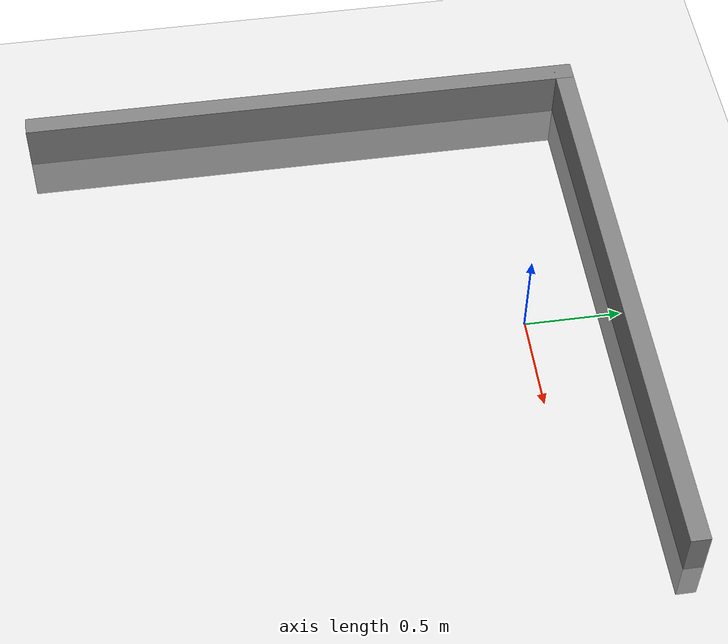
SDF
<?xml version="1.0" ?>
<sdf version="1.6">
  <world name="default">

    <!-- A light source -->
    <include>
      <uri>model://sun</uri>
    </include>

    <!-- Ground plane -->
    <include>
      <uri>model://ground_plane</uri>
    </include>

    <!-- L-Shaped Wall -->
    <model name="L_Wall">
      <static>true</static>
      <pose>0 0.5 0 0 0 0</pose>

      <!-- First section of the L -->
      <link name="wall_section_1">
        <collision name="collision_1">
          <geometry>
            <box>
              <size>3 0.1 0.5</size> <!-- Depth=1m, Width=0.1m, Height=0.5m -->
            </box>
          </geometry>
        </collision>
        <visual name="visual_1">
          <geometry>
            <box>
              <size>3 0.1 0.5</size> <!-- Same size as collision -->
            </box>
          </geometry>
           <material>
            <ambient>0.5 0.5 0.5 1</ambient>
            <diffuse>0.5 0.5 0.5 1</diffuse>
            <specular>0.1 0.1 0.1 1</specular>
          </material>
        </visual>
      </link>

      <!-- Second section of the L, rotated to form the L shape -->
      <link name="wall_section_2">
        <pose>-1.5 -1.45 0 0 0 1.57</pose> <!-- Position it at the end of the first wall, rotated 90 degrees -->
        <collision name="collision_2">
          <geometry>
            <box>
              <size>3.1 0.1 0.5</size> <!-- Same size as first section -->
            </box>
          </geometry>
        </collision>
        <visual name="visual_2">
          <geometry>
            <box>
              <size>3 0.1 0.5</size>
            </box>
          </geometry>
           <material>
            <ambient>0.5 0.5 0.5 1</ambient>
            <diffuse>0.5 0.5 0.5 1</diffuse>
            <specular>0.1 0.1 0.1 1</specular>
          </material>
        </visual>

      </link>
    </model>

  </world>
</sdf>
